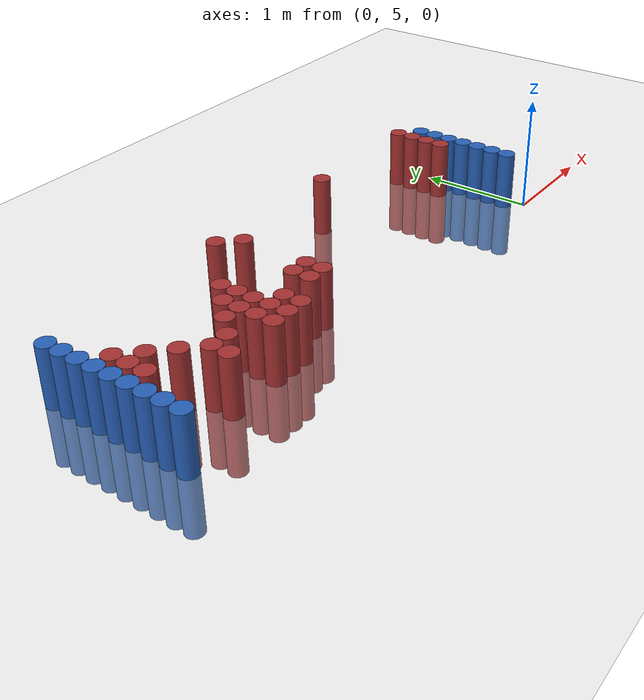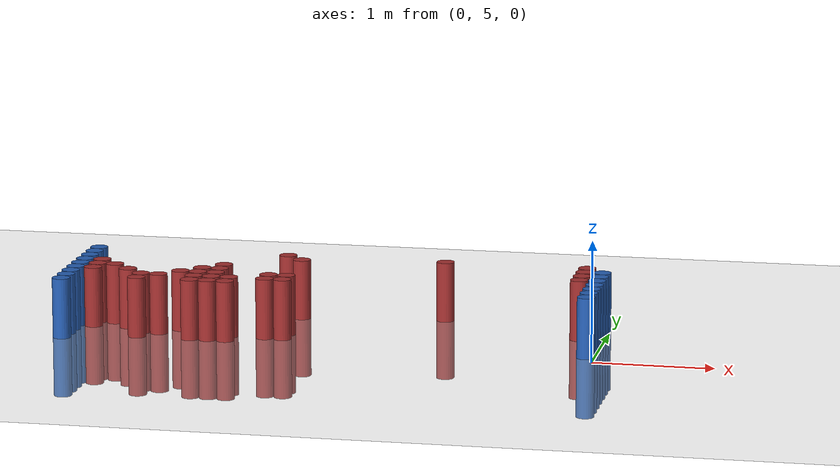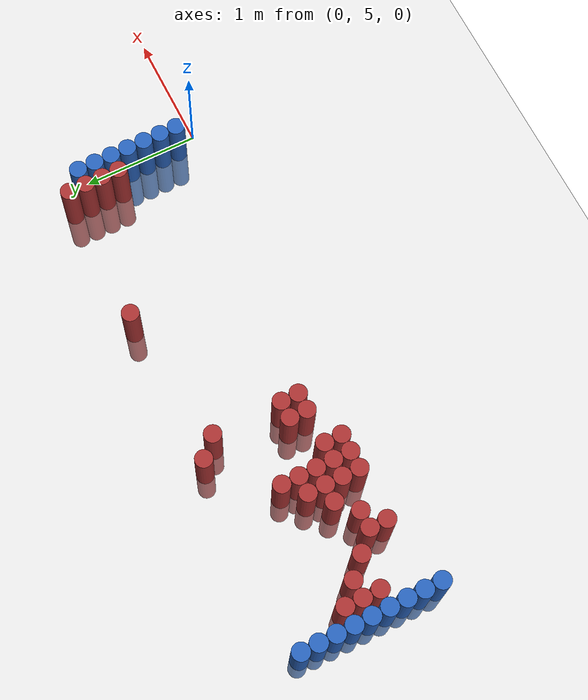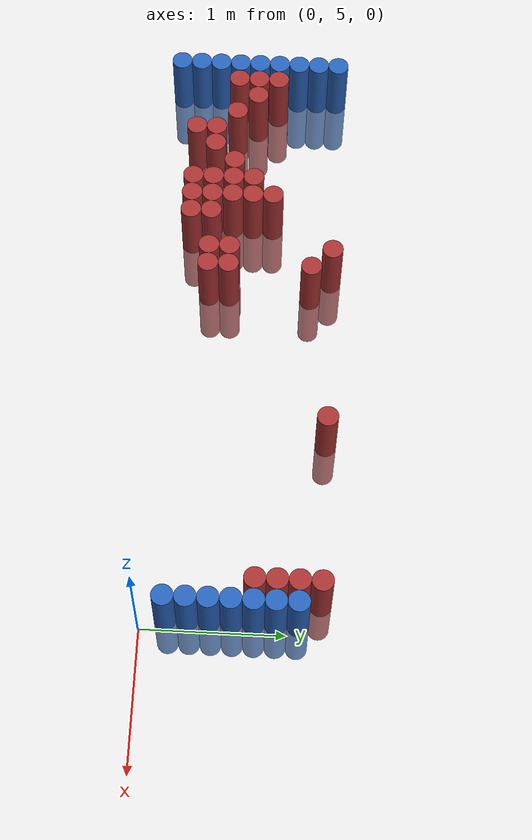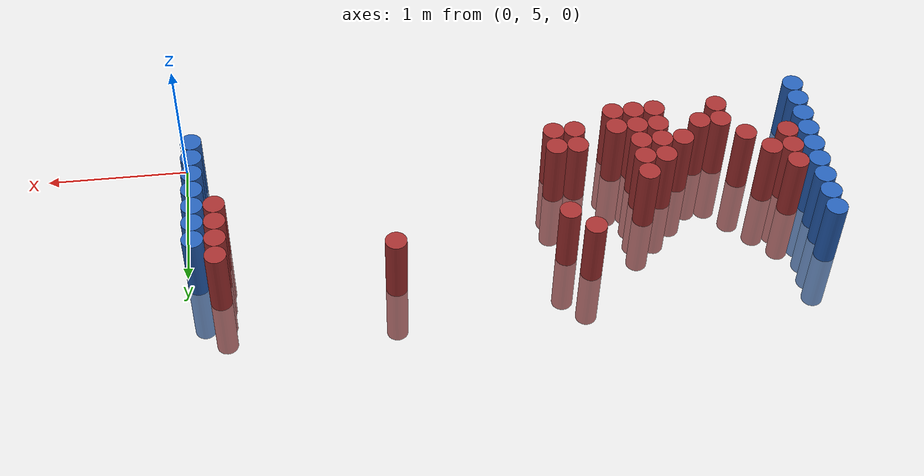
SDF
<sdf version="1.6">
 <world name="default">
  <model name="ground_plane">
   <static>1</static>
   <link name="link">
    <collision name="collision">
     <geometry><plane><normal>0 0 1</normal><size>100 100</size></plane></geometry>
     <surface><friction><ode><mu>100</mu><mu2>50</mu2></ode></friction></surface>
    </collision>
    <visual name="visual">
     <cast_shadows>0</cast_shadows>
     <geometry><plane><normal>0 0 1</normal><size>100 100</size></plane></geometry>
     <material>
      <script><uri>file://media/materials/scripts/gazebo.material</uri><name>Gazebo/Grey</name></script>
     </material>
    </visual>
   </link>
  </model>
  <model name="unit_cylinder_95">
   <static>1</static>
   <pose>-4.425000 5.025000 0.000000 0.000000 0.000000 0.000000</pose>
   <link name="link">
    <inertial>
     <mass>1</mass>
     <inertia><ixx>0.145833</ixx><ixy>0</ixy><ixz>0</ixz><iyy>0.145833</iyy><iyz>0</iyz><izz>0.125</izz></inertia>
    </inertial>
    <collision name="collision">
     <geometry><cylinder><radius>0.075000</radius><length>1</length></cylinder></geometry>
    </collision>
    <visual name="visual">
     <geometry><cylinder><radius>0.075000</radius><length>1</length></cylinder></geometry>
     <material>
      <ambient>0.152000 0.379000 0.720000 1</ambient>
      <diffuse>0.152000 0.379000 0.720000 1</diffuse>
     </material>
     <material>
      <script><name>Gazebo/Grey</name><uri>file://media/materials/scripts/gazebo.material</uri></script>
     </material>
    </visual>
   </link>
  </model>
  <model name="unit_cylinder_96">
   <static>1</static>
   <pose>-4.425000 5.175000 0.000000 0.000000 0.000000 0.000000</pose>
   <link name="link">
    <inertial>
     <mass>1</mass>
     <inertia><ixx>0.145833</ixx><ixy>0</ixy><ixz>0</ixz><iyy>0.145833</iyy><iyz>0</iyz><izz>0.125</izz></inertia>
    </inertial>
    <collision name="collision">
     <geometry><cylinder><radius>0.075000</radius><length>1</length></cylinder></geometry>
    </collision>
    <visual name="visual">
     <geometry><cylinder><radius>0.075000</radius><length>1</length></cylinder></geometry>
     <material>
      <ambient>0.152000 0.379000 0.720000 1</ambient>
      <diffuse>0.152000 0.379000 0.720000 1</diffuse>
     </material>
     <material>
      <script><name>Gazebo/Grey</name><uri>file://media/materials/scripts/gazebo.material</uri></script>
     </material>
    </visual>
   </link>
  </model>
  <model name="unit_cylinder_97">
   <static>1</static>
   <pose>-4.425000 5.325000 0.000000 0.000000 0.000000 0.000000</pose>
   <link name="link">
    <inertial>
     <mass>1</mass>
     <inertia><ixx>0.145833</ixx><ixy>0</ixy><ixz>0</ixz><iyy>0.145833</iyy><iyz>0</iyz><izz>0.125</izz></inertia>
    </inertial>
    <collision name="collision">
     <geometry><cylinder><radius>0.075000</radius><length>1</length></cylinder></geometry>
    </collision>
    <visual name="visual">
     <geometry><cylinder><radius>0.075000</radius><length>1</length></cylinder></geometry>
     <material>
      <ambient>0.152000 0.379000 0.720000 1</ambient>
      <diffuse>0.152000 0.379000 0.720000 1</diffuse>
     </material>
     <material>
      <script><name>Gazebo/Grey</name><uri>file://media/materials/scripts/gazebo.material</uri></script>
     </material>
    </visual>
   </link>
  </model>
  <model name="unit_cylinder_98">
   <static>1</static>
   <pose>-4.425000 5.475000 0.000000 0.000000 0.000000 0.000000</pose>
   <link name="link">
    <inertial>
     <mass>1</mass>
     <inertia><ixx>0.145833</ixx><ixy>0</ixy><ixz>0</ixz><iyy>0.145833</iyy><iyz>0</iyz><izz>0.125</izz></inertia>
    </inertial>
    <collision name="collision">
     <geometry><cylinder><radius>0.075000</radius><length>1</length></cylinder></geometry>
    </collision>
    <visual name="visual">
     <geometry><cylinder><radius>0.075000</radius><length>1</length></cylinder></geometry>
     <material>
      <ambient>0.152000 0.379000 0.720000 1</ambient>
      <diffuse>0.152000 0.379000 0.720000 1</diffuse>
     </material>
     <material>
      <script><name>Gazebo/Grey</name><uri>file://media/materials/scripts/gazebo.material</uri></script>
     </material>
    </visual>
   </link>
  </model>
  <model name="unit_cylinder_99">
   <static>1</static>
   <pose>-4.425000 5.625000 0.000000 0.000000 0.000000 0.000000</pose>
   <link name="link">
    <inertial>
     <mass>1</mass>
     <inertia><ixx>0.145833</ixx><ixy>0</ixy><ixz>0</ixz><iyy>0.145833</iyy><iyz>0</iyz><izz>0.125</izz></inertia>
    </inertial>
    <collision name="collision">
     <geometry><cylinder><radius>0.075000</radius><length>1</length></cylinder></geometry>
    </collision>
    <visual name="visual">
     <geometry><cylinder><radius>0.075000</radius><length>1</length></cylinder></geometry>
     <material>
      <ambient>0.152000 0.379000 0.720000 1</ambient>
      <diffuse>0.152000 0.379000 0.720000 1</diffuse>
     </material>
     <material>
      <script><name>Gazebo/Grey</name><uri>file://media/materials/scripts/gazebo.material</uri></script>
     </material>
    </visual>
   </link>
  </model>
  <model name="unit_cylinder_100">
   <static>1</static>
   <pose>-4.425000 5.775000 0.000000 0.000000 0.000000 0.000000</pose>
   <link name="link">
    <inertial>
     <mass>1</mass>
     <inertia><ixx>0.145833</ixx><ixy>0</ixy><ixz>0</ixz><iyy>0.145833</iyy><iyz>0</iyz><izz>0.125</izz></inertia>
    </inertial>
    <collision name="collision">
     <geometry><cylinder><radius>0.075000</radius><length>1</length></cylinder></geometry>
    </collision>
    <visual name="visual">
     <geometry><cylinder><radius>0.075000</radius><length>1</length></cylinder></geometry>
     <material>
      <ambient>0.152000 0.379000 0.720000 1</ambient>
      <diffuse>0.152000 0.379000 0.720000 1</diffuse>
     </material>
     <material>
      <script><name>Gazebo/Grey</name><uri>file://media/materials/scripts/gazebo.material</uri></script>
     </material>
    </visual>
   </link>
  </model>
  <model name="unit_cylinder_101">
   <static>1</static>
   <pose>-4.425000 5.925000 0.000000 0.000000 0.000000 0.000000</pose>
   <link name="link">
    <inertial>
     <mass>1</mass>
     <inertia><ixx>0.145833</ixx><ixy>0</ixy><ixz>0</ixz><iyy>0.145833</iyy><iyz>0</iyz><izz>0.125</izz></inertia>
    </inertial>
    <collision name="collision">
     <geometry><cylinder><radius>0.075000</radius><length>1</length></cylinder></geometry>
    </collision>
    <visual name="visual">
     <geometry><cylinder><radius>0.075000</radius><length>1</length></cylinder></geometry>
     <material>
      <ambient>0.152000 0.379000 0.720000 1</ambient>
      <diffuse>0.152000 0.379000 0.720000 1</diffuse>
     </material>
     <material>
      <script><name>Gazebo/Grey</name><uri>file://media/materials/scripts/gazebo.material</uri></script>
     </material>
    </visual>
   </link>
  </model>
  <model name="unit_cylinder_102">
   <static>1</static>
   <pose>-4.425000 6.075000 0.000000 0.000000 0.000000 0.000000</pose>
   <link name="link">
    <inertial>
     <mass>1</mass>
     <inertia><ixx>0.145833</ixx><ixy>0</ixy><ixz>0</ixz><iyy>0.145833</iyy><iyz>0</iyz><izz>0.125</izz></inertia>
    </inertial>
    <collision name="collision">
     <geometry><cylinder><radius>0.075000</radius><length>1</length></cylinder></geometry>
    </collision>
    <visual name="visual">
     <geometry><cylinder><radius>0.075000</radius><length>1</length></cylinder></geometry>
     <material>
      <ambient>0.152000 0.379000 0.720000 1</ambient>
      <diffuse>0.152000 0.379000 0.720000 1</diffuse>
     </material>
     <material>
      <script><name>Gazebo/Grey</name><uri>file://media/materials/scripts/gazebo.material</uri></script>
     </material>
    </visual>
   </link>
  </model>
  <model name="unit_cylinder_103">
   <static>1</static>
   <pose>-4.425000 6.225000 0.000000 0.000000 0.000000 0.000000</pose>
   <link name="link">
    <inertial>
     <mass>1</mass>
     <inertia><ixx>0.145833</ixx><ixy>0</ixy><ixz>0</ixz><iyy>0.145833</iyy><iyz>0</iyz><izz>0.125</izz></inertia>
    </inertial>
    <collision name="collision">
     <geometry><cylinder><radius>0.075000</radius><length>1</length></cylinder></geometry>
    </collision>
    <visual name="visual">
     <geometry><cylinder><radius>0.075000</radius><length>1</length></cylinder></geometry>
     <material>
      <ambient>0.152000 0.379000 0.720000 1</ambient>
      <diffuse>0.152000 0.379000 0.720000 1</diffuse>
     </material>
     <material>
      <script><name>Gazebo/Grey</name><uri>file://media/materials/scripts/gazebo.material</uri></script>
     </material>
    </visual>
   </link>
  </model>
  <model name="unit_cylinder_126">
   <static>1</static>
   <pose>-4.275000 5.475000 0.000000 0.000000 0.000000 0.000000</pose>
   <link name="link">
    <inertial>
     <mass>1</mass>
     <inertia><ixx>0.145833</ixx><ixy>0</ixy><ixz>0</ixz><iyy>0.145833</iyy><iyz>0</iyz><izz>0.125</izz></inertia>
    </inertial>
    <collision name="collision">
     <geometry><cylinder><radius>0.075000</radius><length>1</length></cylinder></geometry>
    </collision>
    <visual name="visual">
     <geometry><cylinder><radius>0.075000</radius><length>1</length></cylinder></geometry>
     <material>
      <ambient>0.648000 0.192000 0.192000 1</ambient>
      <diffuse>0.648000 0.192000 0.192000 1</diffuse>
     </material>
     <material>
      <script><name>Gazebo/Grey</name><uri>file://media/materials/scripts/gazebo.material</uri></script>
     </material>
    </visual>
   </link>
  </model>
  <model name="unit_cylinder_127">
   <static>1</static>
   <pose>-4.275000 5.625000 0.000000 0.000000 0.000000 0.000000</pose>
   <link name="link">
    <inertial>
     <mass>1</mass>
     <inertia><ixx>0.145833</ixx><ixy>0</ixy><ixz>0</ixz><iyy>0.145833</iyy><iyz>0</iyz><izz>0.125</izz></inertia>
    </inertial>
    <collision name="collision">
     <geometry><cylinder><radius>0.075000</radius><length>1</length></cylinder></geometry>
    </collision>
    <visual name="visual">
     <geometry><cylinder><radius>0.075000</radius><length>1</length></cylinder></geometry>
     <material>
      <ambient>0.648000 0.192000 0.192000 1</ambient>
      <diffuse>0.648000 0.192000 0.192000 1</diffuse>
     </material>
     <material>
      <script><name>Gazebo/Grey</name><uri>file://media/materials/scripts/gazebo.material</uri></script>
     </material>
    </visual>
   </link>
  </model>
  <model name="unit_cylinder_128">
   <static>1</static>
   <pose>-4.275000 5.775000 0.000000 0.000000 0.000000 0.000000</pose>
   <link name="link">
    <inertial>
     <mass>1</mass>
     <inertia><ixx>0.145833</ixx><ixy>0</ixy><ixz>0</ixz><iyy>0.145833</iyy><iyz>0</iyz><izz>0.125</izz></inertia>
    </inertial>
    <collision name="collision">
     <geometry><cylinder><radius>0.075000</radius><length>1</length></cylinder></geometry>
    </collision>
    <visual name="visual">
     <geometry><cylinder><radius>0.075000</radius><length>1</length></cylinder></geometry>
     <material>
      <ambient>0.648000 0.192000 0.192000 1</ambient>
      <diffuse>0.648000 0.192000 0.192000 1</diffuse>
     </material>
     <material>
      <script><name>Gazebo/Grey</name><uri>file://media/materials/scripts/gazebo.material</uri></script>
     </material>
    </visual>
   </link>
  </model>
  <model name="unit_cylinder_139">
   <static>1</static>
   <pose>-4.125000 5.625000 0.000000 0.000000 0.000000 0.000000</pose>
   <link name="link">
    <inertial>
     <mass>1</mass>
     <inertia><ixx>0.145833</ixx><ixy>0</ixy><ixz>0</ixz><iyy>0.145833</iyy><iyz>0</iyz><izz>0.125</izz></inertia>
    </inertial>
    <collision name="collision">
     <geometry><cylinder><radius>0.075000</radius><length>1</length></cylinder></geometry>
    </collision>
    <visual name="visual">
     <geometry><cylinder><radius>0.075000</radius><length>1</length></cylinder></geometry>
     <material>
      <ambient>0.648000 0.192000 0.192000 1</ambient>
      <diffuse>0.648000 0.192000 0.192000 1</diffuse>
     </material>
     <material>
      <script><name>Gazebo/Grey</name><uri>file://media/materials/scripts/gazebo.material</uri></script>
     </material>
    </visual>
   </link>
  </model>
  <model name="unit_cylinder_142">
   <static>1</static>
   <pose>-3.975000 5.475000 0.000000 0.000000 0.000000 0.000000</pose>
   <link name="link">
    <inertial>
     <mass>1</mass>
     <inertia><ixx>0.145833</ixx><ixy>0</ixy><ixz>0</ixz><iyy>0.145833</iyy><iyz>0</iyz><izz>0.125</izz></inertia>
    </inertial>
    <collision name="collision">
     <geometry><cylinder><radius>0.075000</radius><length>1</length></cylinder></geometry>
    </collision>
    <visual name="visual">
     <geometry><cylinder><radius>0.075000</radius><length>1</length></cylinder></geometry>
     <material>
      <ambient>0.648000 0.192000 0.192000 1</ambient>
      <diffuse>0.648000 0.192000 0.192000 1</diffuse>
     </material>
     <material>
      <script><name>Gazebo/Grey</name><uri>file://media/materials/scripts/gazebo.material</uri></script>
     </material>
    </visual>
   </link>
  </model>
  <model name="unit_cylinder_151">
   <static>1</static>
   <pose>-3.825000 5.175000 0.000000 0.000000 0.000000 0.000000</pose>
   <link name="link">
    <inertial>
     <mass>1</mass>
     <inertia><ixx>0.145833</ixx><ixy>0</ixy><ixz>0</ixz><iyy>0.145833</iyy><iyz>0</iyz><izz>0.125</izz></inertia>
    </inertial>
    <collision name="collision">
     <geometry><cylinder><radius>0.075000</radius><length>1</length></cylinder></geometry>
    </collision>
    <visual name="visual">
     <geometry><cylinder><radius>0.075000</radius><length>1</length></cylinder></geometry>
     <material>
      <ambient>0.648000 0.192000 0.192000 1</ambient>
      <diffuse>0.648000 0.192000 0.192000 1</diffuse>
     </material>
     <material>
      <script><name>Gazebo/Grey</name><uri>file://media/materials/scripts/gazebo.material</uri></script>
     </material>
    </visual>
   </link>
  </model>
  <model name="unit_cylinder_152">
   <static>1</static>
   <pose>-3.825000 5.325000 0.000000 0.000000 0.000000 0.000000</pose>
   <link name="link">
    <inertial>
     <mass>1</mass>
     <inertia><ixx>0.145833</ixx><ixy>0</ixy><ixz>0</ixz><iyy>0.145833</iyy><iyz>0</iyz><izz>0.125</izz></inertia>
    </inertial>
    <collision name="collision">
     <geometry><cylinder><radius>0.075000</radius><length>1</length></cylinder></geometry>
    </collision>
    <visual name="visual">
     <geometry><cylinder><radius>0.075000</radius><length>1</length></cylinder></geometry>
     <material>
      <ambient>0.648000 0.192000 0.192000 1</ambient>
      <diffuse>0.648000 0.192000 0.192000 1</diffuse>
     </material>
     <material>
      <script><name>Gazebo/Grey</name><uri>file://media/materials/scripts/gazebo.material</uri></script>
     </material>
    </visual>
   </link>
  </model>
  <model name="unit_cylinder_159">
   <static>1</static>
   <pose>-3.675000 5.325000 0.000000 0.000000 0.000000 0.000000</pose>
   <link name="link">
    <inertial>
     <mass>1</mass>
     <inertia><ixx>0.145833</ixx><ixy>0</ixy><ixz>0</ixz><iyy>0.145833</iyy><iyz>0</iyz><izz>0.125</izz></inertia>
    </inertial>
    <collision name="collision">
     <geometry><cylinder><radius>0.075000</radius><length>1</length></cylinder></geometry>
    </collision>
    <visual name="visual">
     <geometry><cylinder><radius>0.075000</radius><length>1</length></cylinder></geometry>
     <material>
      <ambient>0.648000 0.192000 0.192000 1</ambient>
      <diffuse>0.648000 0.192000 0.192000 1</diffuse>
     </material>
     <material>
      <script><name>Gazebo/Grey</name><uri>file://media/materials/scripts/gazebo.material</uri></script>
     </material>
    </visual>
   </link>
  </model>
  <model name="unit_cylinder_164">
   <static>1</static>
   <pose>-3.525000 5.475000 0.000000 0.000000 0.000000 0.000000</pose>
   <link name="link">
    <inertial>
     <mass>1</mass>
     <inertia><ixx>0.145833</ixx><ixy>0</ixy><ixz>0</ixz><iyy>0.145833</iyy><iyz>0</iyz><izz>0.125</izz></inertia>
    </inertial>
    <collision name="collision">
     <geometry><cylinder><radius>0.075000</radius><length>1</length></cylinder></geometry>
    </collision>
    <visual name="visual">
     <geometry><cylinder><radius>0.075000</radius><length>1</length></cylinder></geometry>
     <material>
      <ambient>0.648000 0.192000 0.192000 1</ambient>
      <diffuse>0.648000 0.192000 0.192000 1</diffuse>
     </material>
     <material>
      <script><name>Gazebo/Grey</name><uri>file://media/materials/scripts/gazebo.material</uri></script>
     </material>
    </visual>
   </link>
  </model>
  <model name="unit_cylinder_169">
   <static>1</static>
   <pose>-3.375000 5.175000 0.000000 0.000000 0.000000 0.000000</pose>
   <link name="link">
    <inertial>
     <mass>1</mass>
     <inertia><ixx>0.145833</ixx><ixy>0</ixy><ixz>0</ixz><iyy>0.145833</iyy><iyz>0</iyz><izz>0.125</izz></inertia>
    </inertial>
    <collision name="collision">
     <geometry><cylinder><radius>0.075000</radius><length>1</length></cylinder></geometry>
    </collision>
    <visual name="visual">
     <geometry><cylinder><radius>0.075000</radius><length>1</length></cylinder></geometry>
     <material>
      <ambient>0.648000 0.192000 0.192000 1</ambient>
      <diffuse>0.648000 0.192000 0.192000 1</diffuse>
     </material>
     <material>
      <script><name>Gazebo/Grey</name><uri>file://media/materials/scripts/gazebo.material</uri></script>
     </material>
    </visual>
   </link>
  </model>
  <model name="unit_cylinder_170">
   <static>1</static>
   <pose>-3.375000 5.325000 0.000000 0.000000 0.000000 0.000000</pose>
   <link name="link">
    <inertial>
     <mass>1</mass>
     <inertia><ixx>0.145833</ixx><ixy>0</ixy><ixz>0</ixz><iyy>0.145833</iyy><iyz>0</iyz><izz>0.125</izz></inertia>
    </inertial>
    <collision name="collision">
     <geometry><cylinder><radius>0.075000</radius><length>1</length></cylinder></geometry>
    </collision>
    <visual name="visual">
     <geometry><cylinder><radius>0.075000</radius><length>1</length></cylinder></geometry>
     <material>
      <ambient>0.648000 0.192000 0.192000 1</ambient>
      <diffuse>0.648000 0.192000 0.192000 1</diffuse>
     </material>
     <material>
      <script><name>Gazebo/Grey</name><uri>file://media/materials/scripts/gazebo.material</uri></script>
     </material>
    </visual>
   </link>
  </model>
  <model name="unit_cylinder_171">
   <static>1</static>
   <pose>-3.375000 5.475000 0.000000 0.000000 0.000000 0.000000</pose>
   <link name="link">
    <inertial>
     <mass>1</mass>
     <inertia><ixx>0.145833</ixx><ixy>0</ixy><ixz>0</ixz><iyy>0.145833</iyy><iyz>0</iyz><izz>0.125</izz></inertia>
    </inertial>
    <collision name="collision">
     <geometry><cylinder><radius>0.075000</radius><length>1</length></cylinder></geometry>
    </collision>
    <visual name="visual">
     <geometry><cylinder><radius>0.075000</radius><length>1</length></cylinder></geometry>
     <material>
      <ambient>0.648000 0.192000 0.192000 1</ambient>
      <diffuse>0.648000 0.192000 0.192000 1</diffuse>
     </material>
     <material>
      <script><name>Gazebo/Grey</name><uri>file://media/materials/scripts/gazebo.material</uri></script>
     </material>
    </visual>
   </link>
  </model>
  <model name="unit_cylinder_172">
   <static>1</static>
   <pose>-3.375000 5.625000 0.000000 0.000000 0.000000 0.000000</pose>
   <link name="link">
    <inertial>
     <mass>1</mass>
     <inertia><ixx>0.145833</ixx><ixy>0</ixy><ixz>0</ixz><iyy>0.145833</iyy><iyz>0</iyz><izz>0.125</izz></inertia>
    </inertial>
    <collision name="collision">
     <geometry><cylinder><radius>0.075000</radius><length>1</length></cylinder></geometry>
    </collision>
    <visual name="visual">
     <geometry><cylinder><radius>0.075000</radius><length>1</length></cylinder></geometry>
     <material>
      <ambient>0.648000 0.192000 0.192000 1</ambient>
      <diffuse>0.648000 0.192000 0.192000 1</diffuse>
     </material>
     <material>
      <script><name>Gazebo/Grey</name><uri>file://media/materials/scripts/gazebo.material</uri></script>
     </material>
    </visual>
   </link>
  </model>
  <model name="unit_cylinder_182">
   <static>1</static>
   <pose>-3.225000 5.175000 0.000000 0.000000 0.000000 0.000000</pose>
   <link name="link">
    <inertial>
     <mass>1</mass>
     <inertia><ixx>0.145833</ixx><ixy>0</ixy><ixz>0</ixz><iyy>0.145833</iyy><iyz>0</iyz><izz>0.125</izz></inertia>
    </inertial>
    <collision name="collision">
     <geometry><cylinder><radius>0.075000</radius><length>1</length></cylinder></geometry>
    </collision>
    <visual name="visual">
     <geometry><cylinder><radius>0.075000</radius><length>1</length></cylinder></geometry>
     <material>
      <ambient>0.648000 0.192000 0.192000 1</ambient>
      <diffuse>0.648000 0.192000 0.192000 1</diffuse>
     </material>
     <material>
      <script><name>Gazebo/Grey</name><uri>file://media/materials/scripts/gazebo.material</uri></script>
     </material>
    </visual>
   </link>
  </model>
  <model name="unit_cylinder_183">
   <static>1</static>
   <pose>-3.225000 5.325000 0.000000 0.000000 0.000000 0.000000</pose>
   <link name="link">
    <inertial>
     <mass>1</mass>
     <inertia><ixx>0.145833</ixx><ixy>0</ixy><ixz>0</ixz><iyy>0.145833</iyy><iyz>0</iyz><izz>0.125</izz></inertia>
    </inertial>
    <collision name="collision">
     <geometry><cylinder><radius>0.075000</radius><length>1</length></cylinder></geometry>
    </collision>
    <visual name="visual">
     <geometry><cylinder><radius>0.075000</radius><length>1</length></cylinder></geometry>
     <material>
      <ambient>0.648000 0.192000 0.192000 1</ambient>
      <diffuse>0.648000 0.192000 0.192000 1</diffuse>
     </material>
     <material>
      <script><name>Gazebo/Grey</name><uri>file://media/materials/scripts/gazebo.material</uri></script>
     </material>
    </visual>
   </link>
  </model>
  <model name="unit_cylinder_184">
   <static>1</static>
   <pose>-3.225000 5.475000 0.000000 0.000000 0.000000 0.000000</pose>
   <link name="link">
    <inertial>
     <mass>1</mass>
     <inertia><ixx>0.145833</ixx><ixy>0</ixy><ixz>0</ixz><iyy>0.145833</iyy><iyz>0</iyz><izz>0.125</izz></inertia>
    </inertial>
    <collision name="collision">
     <geometry><cylinder><radius>0.075000</radius><length>1</length></cylinder></geometry>
    </collision>
    <visual name="visual">
     <geometry><cylinder><radius>0.075000</radius><length>1</length></cylinder></geometry>
     <material>
      <ambient>0.648000 0.192000 0.192000 1</ambient>
      <diffuse>0.648000 0.192000 0.192000 1</diffuse>
     </material>
     <material>
      <script><name>Gazebo/Grey</name><uri>file://media/materials/scripts/gazebo.material</uri></script>
     </material>
    </visual>
   </link>
  </model>
  <model name="unit_cylinder_185">
   <static>1</static>
   <pose>-3.225000 5.625000 0.000000 0.000000 0.000000 0.000000</pose>
   <link name="link">
    <inertial>
     <mass>1</mass>
     <inertia><ixx>0.145833</ixx><ixy>0</ixy><ixz>0</ixz><iyy>0.145833</iyy><iyz>0</iyz><izz>0.125</izz></inertia>
    </inertial>
    <collision name="collision">
     <geometry><cylinder><radius>0.075000</radius><length>1</length></cylinder></geometry>
    </collision>
    <visual name="visual">
     <geometry><cylinder><radius>0.075000</radius><length>1</length></cylinder></geometry>
     <material>
      <ambient>0.648000 0.192000 0.192000 1</ambient>
      <diffuse>0.648000 0.192000 0.192000 1</diffuse>
     </material>
     <material>
      <script><name>Gazebo/Grey</name><uri>file://media/materials/scripts/gazebo.material</uri></script>
     </material>
    </visual>
   </link>
  </model>
  <model name="unit_cylinder_186">
   <static>1</static>
   <pose>-3.225000 5.775000 0.000000 0.000000 0.000000 0.000000</pose>
   <link name="link">
    <inertial>
     <mass>1</mass>
     <inertia><ixx>0.145833</ixx><ixy>0</ixy><ixz>0</ixz><iyy>0.145833</iyy><iyz>0</iyz><izz>0.125</izz></inertia>
    </inertial>
    <collision name="collision">
     <geometry><cylinder><radius>0.075000</radius><length>1</length></cylinder></geometry>
    </collision>
    <visual name="visual">
     <geometry><cylinder><radius>0.075000</radius><length>1</length></cylinder></geometry>
     <material>
      <ambient>0.648000 0.192000 0.192000 1</ambient>
      <diffuse>0.648000 0.192000 0.192000 1</diffuse>
     </material>
     <material>
      <script><name>Gazebo/Grey</name><uri>file://media/materials/scripts/gazebo.material</uri></script>
     </material>
    </visual>
   </link>
  </model>
  <model name="unit_cylinder_192">
   <static>1</static>
   <pose>-3.075000 5.175000 0.000000 0.000000 0.000000 0.000000</pose>
   <link name="link">
    <inertial>
     <mass>1</mass>
     <inertia><ixx>0.145833</ixx><ixy>0</ixy><ixz>0</ixz><iyy>0.145833</iyy><iyz>0</iyz><izz>0.125</izz></inertia>
    </inertial>
    <collision name="collision">
     <geometry><cylinder><radius>0.075000</radius><length>1</length></cylinder></geometry>
    </collision>
    <visual name="visual">
     <geometry><cylinder><radius>0.075000</radius><length>1</length></cylinder></geometry>
     <material>
      <ambient>0.648000 0.192000 0.192000 1</ambient>
      <diffuse>0.648000 0.192000 0.192000 1</diffuse>
     </material>
     <material>
      <script><name>Gazebo/Grey</name><uri>file://media/materials/scripts/gazebo.material</uri></script>
     </material>
    </visual>
   </link>
  </model>
  <model name="unit_cylinder_193">
   <static>1</static>
   <pose>-3.075000 5.325000 0.000000 0.000000 0.000000 0.000000</pose>
   <link name="link">
    <inertial>
     <mass>1</mass>
     <inertia><ixx>0.145833</ixx><ixy>0</ixy><ixz>0</ixz><iyy>0.145833</iyy><iyz>0</iyz><izz>0.125</izz></inertia>
    </inertial>
    <collision name="collision">
     <geometry><cylinder><radius>0.075000</radius><length>1</length></cylinder></geometry>
    </collision>
    <visual name="visual">
     <geometry><cylinder><radius>0.075000</radius><length>1</length></cylinder></geometry>
     <material>
      <ambient>0.648000 0.192000 0.192000 1</ambient>
      <diffuse>0.648000 0.192000 0.192000 1</diffuse>
     </material>
     <material>
      <script><name>Gazebo/Grey</name><uri>file://media/materials/scripts/gazebo.material</uri></script>
     </material>
    </visual>
   </link>
  </model>
  <model name="unit_cylinder_209">
   <static>1</static>
   <pose>-2.775000 5.325000 0.000000 0.000000 0.000000 0.000000</pose>
   <link name="link">
    <inertial>
     <mass>1</mass>
     <inertia><ixx>0.145833</ixx><ixy>0</ixy><ixz>0</ixz><iyy>0.145833</iyy><iyz>0</iyz><izz>0.125</izz></inertia>
    </inertial>
    <collision name="collision">
     <geometry><cylinder><radius>0.075000</radius><length>1</length></cylinder></geometry>
    </collision>
    <visual name="visual">
     <geometry><cylinder><radius>0.075000</radius><length>1</length></cylinder></geometry>
     <material>
      <ambient>0.648000 0.192000 0.192000 1</ambient>
      <diffuse>0.648000 0.192000 0.192000 1</diffuse>
     </material>
     <material>
      <script><name>Gazebo/Grey</name><uri>file://media/materials/scripts/gazebo.material</uri></script>
     </material>
    </visual>
   </link>
  </model>
  <model name="unit_cylinder_210">
   <static>1</static>
   <pose>-2.775000 5.475000 0.000000 0.000000 0.000000 0.000000</pose>
   <link name="link">
    <inertial>
     <mass>1</mass>
     <inertia><ixx>0.145833</ixx><ixy>0</ixy><ixz>0</ixz><iyy>0.145833</iyy><iyz>0</iyz><izz>0.125</izz></inertia>
    </inertial>
    <collision name="collision">
     <geometry><cylinder><radius>0.075000</radius><length>1</length></cylinder></geometry>
    </collision>
    <visual name="visual">
     <geometry><cylinder><radius>0.075000</radius><length>1</length></cylinder></geometry>
     <material>
      <ambient>0.648000 0.192000 0.192000 1</ambient>
      <diffuse>0.648000 0.192000 0.192000 1</diffuse>
     </material>
     <material>
      <script><name>Gazebo/Grey</name><uri>file://media/materials/scripts/gazebo.material</uri></script>
     </material>
    </visual>
   </link>
  </model>
  <model name="unit_cylinder_211">
   <static>1</static>
   <pose>-2.775000 6.225000 0.000000 0.000000 0.000000 0.000000</pose>
   <link name="link">
    <inertial>
     <mass>1</mass>
     <inertia><ixx>0.145833</ixx><ixy>0</ixy><ixz>0</ixz><iyy>0.145833</iyy><iyz>0</iyz><izz>0.125</izz></inertia>
    </inertial>
    <collision name="collision">
     <geometry><cylinder><radius>0.075000</radius><length>1</length></cylinder></geometry>
    </collision>
    <visual name="visual">
     <geometry><cylinder><radius>0.075000</radius><length>1</length></cylinder></geometry>
     <material>
      <ambient>0.648000 0.192000 0.192000 1</ambient>
      <diffuse>0.648000 0.192000 0.192000 1</diffuse>
     </material>
     <material>
      <script><name>Gazebo/Grey</name><uri>file://media/materials/scripts/gazebo.material</uri></script>
     </material>
    </visual>
   </link>
  </model>
  <model name="unit_cylinder_214">
   <static>1</static>
   <pose>-2.625000 5.325000 0.000000 0.000000 0.000000 0.000000</pose>
   <link name="link">
    <inertial>
     <mass>1</mass>
     <inertia><ixx>0.145833</ixx><ixy>0</ixy><ixz>0</ixz><iyy>0.145833</iyy><iyz>0</iyz><izz>0.125</izz></inertia>
    </inertial>
    <collision name="collision">
     <geometry><cylinder><radius>0.075000</radius><length>1</length></cylinder></geometry>
    </collision>
    <visual name="visual">
     <geometry><cylinder><radius>0.075000</radius><length>1</length></cylinder></geometry>
     <material>
      <ambient>0.648000 0.192000 0.192000 1</ambient>
      <diffuse>0.648000 0.192000 0.192000 1</diffuse>
     </material>
     <material>
      <script><name>Gazebo/Grey</name><uri>file://media/materials/scripts/gazebo.material</uri></script>
     </material>
    </visual>
   </link>
  </model>
  <model name="unit_cylinder_215">
   <static>1</static>
   <pose>-2.625000 5.475000 0.000000 0.000000 0.000000 0.000000</pose>
   <link name="link">
    <inertial>
     <mass>1</mass>
     <inertia><ixx>0.145833</ixx><ixy>0</ixy><ixz>0</ixz><iyy>0.145833</iyy><iyz>0</iyz><izz>0.125</izz></inertia>
    </inertial>
    <collision name="collision">
     <geometry><cylinder><radius>0.075000</radius><length>1</length></cylinder></geometry>
    </collision>
    <visual name="visual">
     <geometry><cylinder><radius>0.075000</radius><length>1</length></cylinder></geometry>
     <material>
      <ambient>0.648000 0.192000 0.192000 1</ambient>
      <diffuse>0.648000 0.192000 0.192000 1</diffuse>
     </material>
     <material>
      <script><name>Gazebo/Grey</name><uri>file://media/materials/scripts/gazebo.material</uri></script>
     </material>
    </visual>
   </link>
  </model>
  <model name="unit_cylinder_216">
   <static>1</static>
   <pose>-2.625000 6.075000 0.000000 0.000000 0.000000 0.000000</pose>
   <link name="link">
    <inertial>
     <mass>1</mass>
     <inertia><ixx>0.145833</ixx><ixy>0</ixy><ixz>0</ixz><iyy>0.145833</iyy><iyz>0</iyz><izz>0.125</izz></inertia>
    </inertial>
    <collision name="collision">
     <geometry><cylinder><radius>0.075000</radius><length>1</length></cylinder></geometry>
    </collision>
    <visual name="visual">
     <geometry><cylinder><radius>0.075000</radius><length>1</length></cylinder></geometry>
     <material>
      <ambient>0.648000 0.192000 0.192000 1</ambient>
      <diffuse>0.648000 0.192000 0.192000 1</diffuse>
     </material>
     <material>
      <script><name>Gazebo/Grey</name><uri>file://media/materials/scripts/gazebo.material</uri></script>
     </material>
    </visual>
   </link>
  </model>
  <model name="unit_cylinder_251">
   <static>1</static>
   <pose>-1.425000 6.225000 0.000000 0.000000 0.000000 0.000000</pose>
   <link name="link">
    <inertial>
     <mass>1</mass>
     <inertia><ixx>0.145833</ixx><ixy>0</ixy><ixz>0</ixz><iyy>0.145833</iyy><iyz>0</iyz><izz>0.125</izz></inertia>
    </inertial>
    <collision name="collision">
     <geometry><cylinder><radius>0.075000</radius><length>1</length></cylinder></geometry>
    </collision>
    <visual name="visual">
     <geometry><cylinder><radius>0.075000</radius><length>1</length></cylinder></geometry>
     <material>
      <ambient>0.648000 0.192000 0.192000 1</ambient>
      <diffuse>0.648000 0.192000 0.192000 1</diffuse>
     </material>
     <material>
      <script><name>Gazebo/Grey</name><uri>file://media/materials/scripts/gazebo.material</uri></script>
     </material>
    </visual>
   </link>
  </model>
  <model name="unit_cylinder_280">
   <static>1</static>
   <pose>-0.225000 5.775000 0.000000 0.000000 0.000000 0.000000</pose>
   <link name="link">
    <inertial>
     <mass>1</mass>
     <inertia><ixx>0.145833</ixx><ixy>0</ixy><ixz>0</ixz><iyy>0.145833</iyy><iyz>0</iyz><izz>0.125</izz></inertia>
    </inertial>
    <collision name="collision">
     <geometry><cylinder><radius>0.075000</radius><length>1</length></cylinder></geometry>
    </collision>
    <visual name="visual">
     <geometry><cylinder><radius>0.075000</radius><length>1</length></cylinder></geometry>
     <material>
      <ambient>0.648000 0.192000 0.192000 1</ambient>
      <diffuse>0.648000 0.192000 0.192000 1</diffuse>
     </material>
     <material>
      <script><name>Gazebo/Grey</name><uri>file://media/materials/scripts/gazebo.material</uri></script>
     </material>
    </visual>
   </link>
  </model>
  <model name="unit_cylinder_281">
   <static>1</static>
   <pose>-0.225000 5.925000 0.000000 0.000000 0.000000 0.000000</pose>
   <link name="link">
    <inertial>
     <mass>1</mass>
     <inertia><ixx>0.145833</ixx><ixy>0</ixy><ixz>0</ixz><iyy>0.145833</iyy><iyz>0</iyz><izz>0.125</izz></inertia>
    </inertial>
    <collision name="collision">
     <geometry><cylinder><radius>0.075000</radius><length>1</length></cylinder></geometry>
    </collision>
    <visual name="visual">
     <geometry><cylinder><radius>0.075000</radius><length>1</length></cylinder></geometry>
     <material>
      <ambient>0.648000 0.192000 0.192000 1</ambient>
      <diffuse>0.648000 0.192000 0.192000 1</diffuse>
     </material>
     <material>
      <script><name>Gazebo/Grey</name><uri>file://media/materials/scripts/gazebo.material</uri></script>
     </material>
    </visual>
   </link>
  </model>
  <model name="unit_cylinder_282">
   <static>1</static>
   <pose>-0.225000 6.075000 0.000000 0.000000 0.000000 0.000000</pose>
   <link name="link">
    <inertial>
     <mass>1</mass>
     <inertia><ixx>0.145833</ixx><ixy>0</ixy><ixz>0</ixz><iyy>0.145833</iyy><iyz>0</iyz><izz>0.125</izz></inertia>
    </inertial>
    <collision name="collision">
     <geometry><cylinder><radius>0.075000</radius><length>1</length></cylinder></geometry>
    </collision>
    <visual name="visual">
     <geometry><cylinder><radius>0.075000</radius><length>1</length></cylinder></geometry>
     <material>
      <ambient>0.648000 0.192000 0.192000 1</ambient>
      <diffuse>0.648000 0.192000 0.192000 1</diffuse>
     </material>
     <material>
      <script><name>Gazebo/Grey</name><uri>file://media/materials/scripts/gazebo.material</uri></script>
     </material>
    </visual>
   </link>
  </model>
  <model name="unit_cylinder_283">
   <static>1</static>
   <pose>-0.225000 6.225000 0.000000 0.000000 0.000000 0.000000</pose>
   <link name="link">
    <inertial>
     <mass>1</mass>
     <inertia><ixx>0.145833</ixx><ixy>0</ixy><ixz>0</ixz><iyy>0.145833</iyy><iyz>0</iyz><izz>0.125</izz></inertia>
    </inertial>
    <collision name="collision">
     <geometry><cylinder><radius>0.075000</radius><length>1</length></cylinder></geometry>
    </collision>
    <visual name="visual">
     <geometry><cylinder><radius>0.075000</radius><length>1</length></cylinder></geometry>
     <material>
      <ambient>0.648000 0.192000 0.192000 1</ambient>
      <diffuse>0.648000 0.192000 0.192000 1</diffuse>
     </material>
     <material>
      <script><name>Gazebo/Grey</name><uri>file://media/materials/scripts/gazebo.material</uri></script>
     </material>
    </visual>
   </link>
  </model>
  <model name="unit_cylinder_300">
   <static>1</static>
   <pose>-0.075000 5.175000 0.000000 0.000000 0.000000 0.000000</pose>
   <link name="link">
    <inertial>
     <mass>1</mass>
     <inertia><ixx>0.145833</ixx><ixy>0</ixy><ixz>0</ixz><iyy>0.145833</iyy><iyz>0</iyz><izz>0.125</izz></inertia>
    </inertial>
    <collision name="collision">
     <geometry><cylinder><radius>0.075000</radius><length>1</length></cylinder></geometry>
    </collision>
    <visual name="visual">
     <geometry><cylinder><radius>0.075000</radius><length>1</length></cylinder></geometry>
     <material>
      <ambient>0.152000 0.379000 0.720000 1</ambient>
      <diffuse>0.152000 0.379000 0.720000 1</diffuse>
     </material>
     <material>
      <script><name>Gazebo/Grey</name><uri>file://media/materials/scripts/gazebo.material</uri></script>
     </material>
    </visual>
   </link>
  </model>
  <model name="unit_cylinder_301">
   <static>1</static>
   <pose>-0.075000 5.325000 0.000000 0.000000 0.000000 0.000000</pose>
   <link name="link">
    <inertial>
     <mass>1</mass>
     <inertia><ixx>0.145833</ixx><ixy>0</ixy><ixz>0</ixz><iyy>0.145833</iyy><iyz>0</iyz><izz>0.125</izz></inertia>
    </inertial>
    <collision name="collision">
     <geometry><cylinder><radius>0.075000</radius><length>1</length></cylinder></geometry>
    </collision>
    <visual name="visual">
     <geometry><cylinder><radius>0.075000</radius><length>1</length></cylinder></geometry>
     <material>
      <ambient>0.152000 0.379000 0.720000 1</ambient>
      <diffuse>0.152000 0.379000 0.720000 1</diffuse>
     </material>
     <material>
      <script><name>Gazebo/Grey</name><uri>file://media/materials/scripts/gazebo.material</uri></script>
     </material>
    </visual>
   </link>
  </model>
  <model name="unit_cylinder_302">
   <static>1</static>
   <pose>-0.075000 5.475000 0.000000 0.000000 0.000000 0.000000</pose>
   <link name="link">
    <inertial>
     <mass>1</mass>
     <inertia><ixx>0.145833</ixx><ixy>0</ixy><ixz>0</ixz><iyy>0.145833</iyy><iyz>0</iyz><izz>0.125</izz></inertia>
    </inertial>
    <collision name="collision">
     <geometry><cylinder><radius>0.075000</radius><length>1</length></cylinder></geometry>
    </collision>
    <visual name="visual">
     <geometry><cylinder><radius>0.075000</radius><length>1</length></cylinder></geometry>
     <material>
      <ambient>0.152000 0.379000 0.720000 1</ambient>
      <diffuse>0.152000 0.379000 0.720000 1</diffuse>
     </material>
     <material>
      <script><name>Gazebo/Grey</name><uri>file://media/materials/scripts/gazebo.material</uri></script>
     </material>
    </visual>
   </link>
  </model>
  <model name="unit_cylinder_303">
   <static>1</static>
   <pose>-0.075000 5.625000 0.000000 0.000000 0.000000 0.000000</pose>
   <link name="link">
    <inertial>
     <mass>1</mass>
     <inertia><ixx>0.145833</ixx><ixy>0</ixy><ixz>0</ixz><iyy>0.145833</iyy><iyz>0</iyz><izz>0.125</izz></inertia>
    </inertial>
    <collision name="collision">
     <geometry><cylinder><radius>0.075000</radius><length>1</length></cylinder></geometry>
    </collision>
    <visual name="visual">
     <geometry><cylinder><radius>0.075000</radius><length>1</length></cylinder></geometry>
     <material>
      <ambient>0.152000 0.379000 0.720000 1</ambient>
      <diffuse>0.152000 0.379000 0.720000 1</diffuse>
     </material>
     <material>
      <script><name>Gazebo/Grey</name><uri>file://media/materials/scripts/gazebo.material</uri></script>
     </material>
    </visual>
   </link>
  </model>
  <model name="unit_cylinder_304">
   <static>1</static>
   <pose>-0.075000 5.775000 0.000000 0.000000 0.000000 0.000000</pose>
   <link name="link">
    <inertial>
     <mass>1</mass>
     <inertia><ixx>0.145833</ixx><ixy>0</ixy><ixz>0</ixz><iyy>0.145833</iyy><iyz>0</iyz><izz>0.125</izz></inertia>
    </inertial>
    <collision name="collision">
     <geometry><cylinder><radius>0.075000</radius><length>1</length></cylinder></geometry>
    </collision>
    <visual name="visual">
     <geometry><cylinder><radius>0.075000</radius><length>1</length></cylinder></geometry>
     <material>
      <ambient>0.152000 0.379000 0.720000 1</ambient>
      <diffuse>0.152000 0.379000 0.720000 1</diffuse>
     </material>
     <material>
      <script><name>Gazebo/Grey</name><uri>file://media/materials/scripts/gazebo.material</uri></script>
     </material>
    </visual>
   </link>
  </model>
  <model name="unit_cylinder_305">
   <static>1</static>
   <pose>-0.075000 5.925000 0.000000 0.000000 0.000000 0.000000</pose>
   <link name="link">
    <inertial>
     <mass>1</mass>
     <inertia><ixx>0.145833</ixx><ixy>0</ixy><ixz>0</ixz><iyy>0.145833</iyy><iyz>0</iyz><izz>0.125</izz></inertia>
    </inertial>
    <collision name="collision">
     <geometry><cylinder><radius>0.075000</radius><length>1</length></cylinder></geometry>
    </collision>
    <visual name="visual">
     <geometry><cylinder><radius>0.075000</radius><length>1</length></cylinder></geometry>
     <material>
      <ambient>0.152000 0.379000 0.720000 1</ambient>
      <diffuse>0.152000 0.379000 0.720000 1</diffuse>
     </material>
     <material>
      <script><name>Gazebo/Grey</name><uri>file://media/materials/scripts/gazebo.material</uri></script>
     </material>
    </visual>
   </link>
  </model>
  <model name="unit_cylinder_306">
   <static>1</static>
   <pose>-0.075000 6.075000 0.000000 0.000000 0.000000 0.000000</pose>
   <link name="link">
    <inertial>
     <mass>1</mass>
     <inertia><ixx>0.145833</ixx><ixy>0</ixy><ixz>0</ixz><iyy>0.145833</iyy><iyz>0</iyz><izz>0.125</izz></inertia>
    </inertial>
    <collision name="collision">
     <geometry><cylinder><radius>0.075000</radius><length>1</length></cylinder></geometry>
    </collision>
    <visual name="visual">
     <geometry><cylinder><radius>0.075000</radius><length>1</length></cylinder></geometry>
     <material>
      <ambient>0.152000 0.379000 0.720000 1</ambient>
      <diffuse>0.152000 0.379000 0.720000 1</diffuse>
     </material>
     <material>
      <script><name>Gazebo/Grey</name><uri>file://media/materials/scripts/gazebo.material</uri></script>
     </material>
    </visual>
   </link>
  </model>
 </world>
</sdf>
